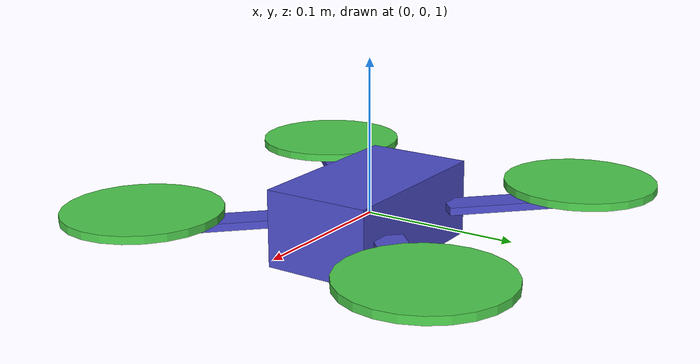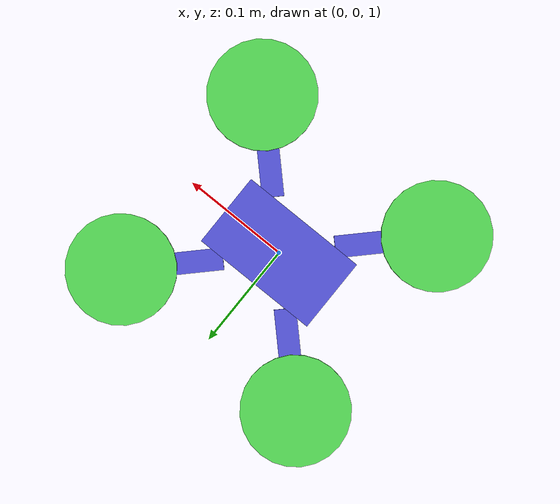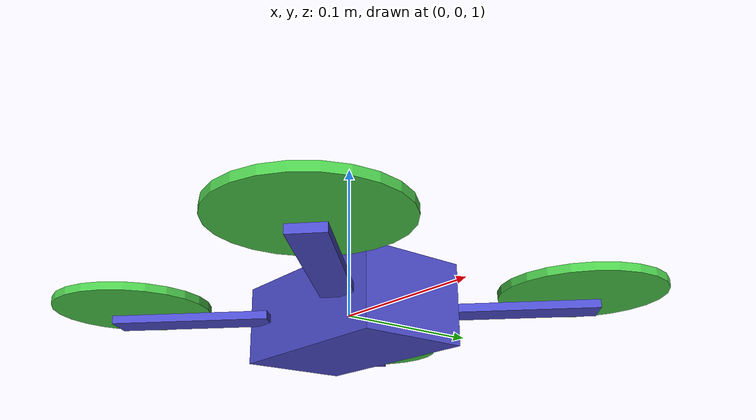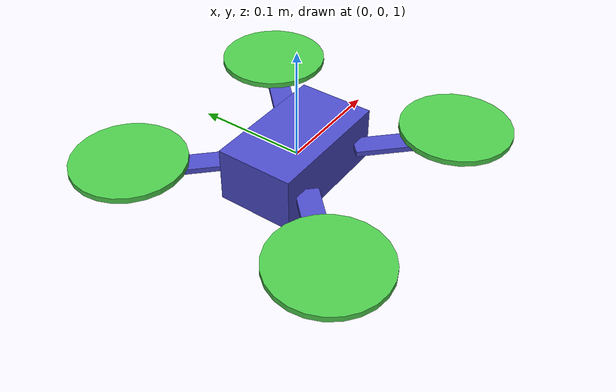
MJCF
<mujoco model="quadrotor0">
	<compiler inertiafromgeom="true" coordinate="local"/>
	<option	timestep="0.01" gravity="0 0 -9.81" density="1" viscosity="1e-5" />
  <asset>
    <texture builtin="gradient" height="100" rgb1="1 1 1" rgb2="0 0 0" type="skybox" width="100"/>
    <texture builtin="flat" height="1278" mark="cross" markrgb="1 1 1" name="texgeom" random="0.01" rgb1="0.8 0.6 0.4" rgb2="0.8 0.6 0.4" type="cube" width="127"/>
    <texture builtin="checker" height="100" name="texplane" rgb1="0 0 0" rgb2="0.8 0.8 0.8" type="2d" width="100"/>
    <material name="MatPlane" reflectance="0.5" shininess="1" specular="1" texrepeat="60 60" texture="texplane"/>
    <material name="geom" texture="texgeom" texuniform="true"/>
  </asset>
	<worldbody>
		<body name="quadrotor" pos="0 0 1.0" >
			<geom name="core" type="box" pos="0 0 0" quat = "1. 0. 0. 0" size="0.06 0.035 0.025"  rgba="0.3 0.3 0.8 1" mass = ".1"/>

			<geom name="a00" type="box" pos=".071 0.071 0.0" size="0.05 0.01 0.0025"  quat = ".924 0.0 0.0 0.383" rgba="0.3 0.3 0.8 1" mass = ".025"/>
			<geom name="a10" type="box" pos=".071 -0.071 0.0" size="0.05 0.01 0.0025"  quat = ".383 0.0 0.0 0.924" rgba="0.3 0.3 0.8 1" mass = ".025"/>
			<geom name="a20" type="box" pos="-0.071 -0.071 0.0" size="0.05 0.01 0.0025"  quat = "-.383 0.0 0.0 0.924" rgba="0.3 0.3 0.8 1" mass = ".025"/>
			<geom name="a30" type="box" pos="-.071 0.071 0.0" size="0.05 0.01 0.0025"  quat = ".924 0.0 0.0 -0.383" rgba="0.3 0.3 0.8 1" mass = ".025"/>

			<!-- Thruster geometries for collisions since site's are excluded from collision checking --->
            <geom name="thruster0" type="cylinder" pos=" 0.1  0.1  0.01" size="0.05 0.0025"  quat = "1.0 0.0 0.0 0." rgba="0.3 0.8 0.3 1" mass = ".025"/>
            <geom name="thruster1" type="cylinder" pos=" 0.1 -0.1  0.01" size="0.05 0.0025"  quat = "1.0 0.0 0.0 0." rgba="0.3 0.8 0.3 1" mass = ".025"/>
            <geom name="thruster2" type="cylinder" pos="-0.1 -0.1  0.01" size="0.05 0.0025"  quat = "1.0 0.0 0.0 0." rgba="0.3 0.8 0.3 1" mass = ".025"/>
            <geom name="thruster3" type="cylinder" pos="-0.1  0.1  0.01" size="0.05 0.0025"  quat = "1.0 0.0 0.0 0." rgba="0.3 0.8 0.3 1" mass = ".025"/>

            <!-- Visualization of the coordinate frame --->
		</body>
	</worldbody>
    <actuator>
	</actuator>
</mujoco>
